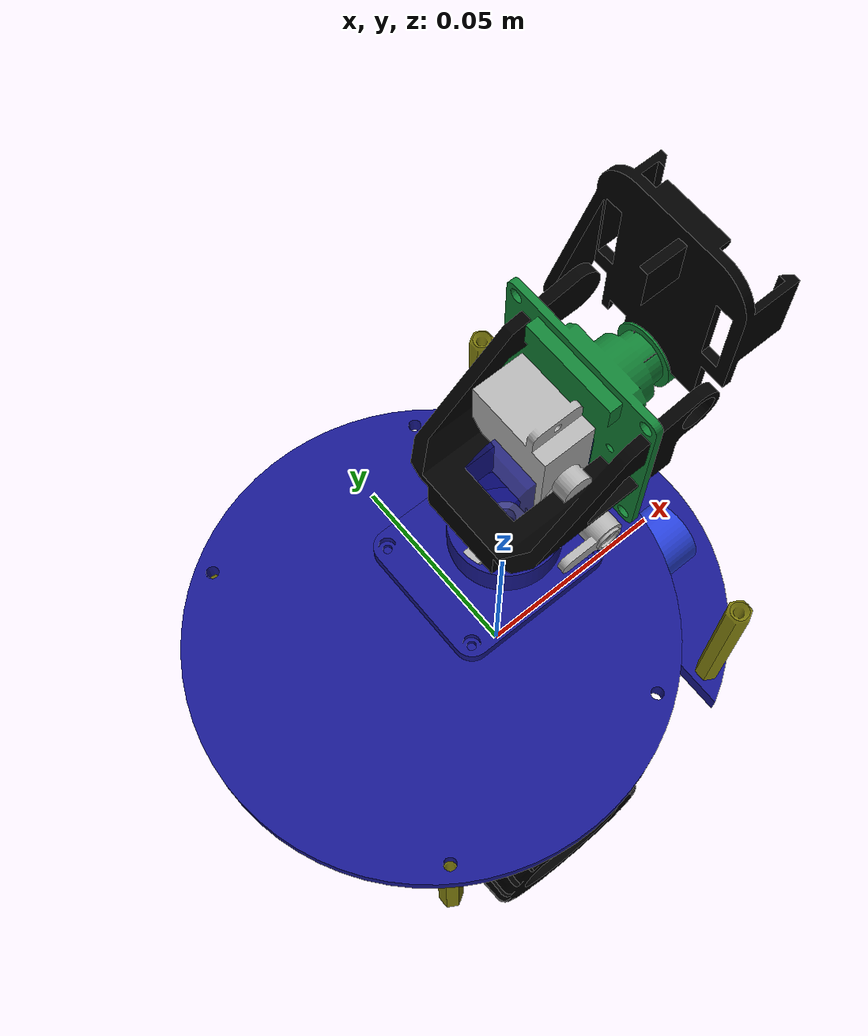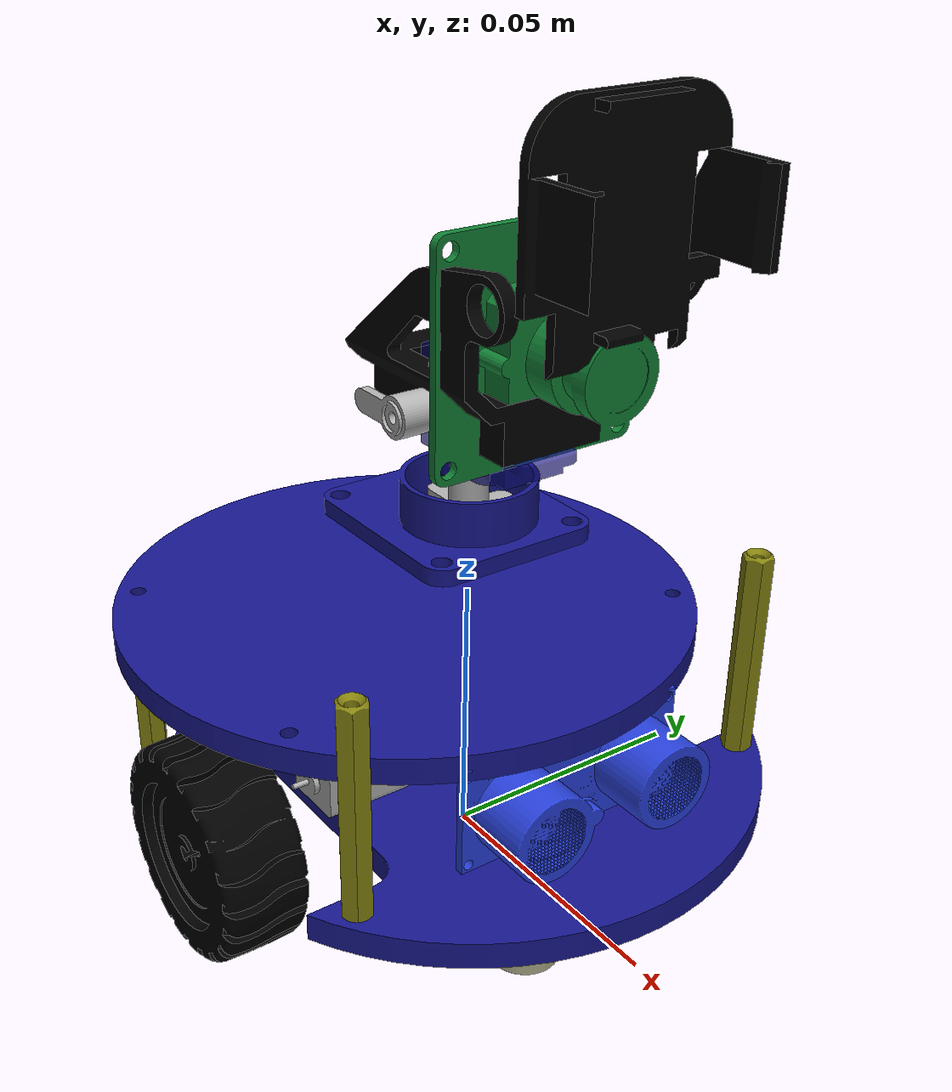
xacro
<?xml version="1.0" ?>
<robot name="alphabot" xmlns:xacro="http://www.ros.org/wiki/xacro">

<xacro:include filename="$(find alphabot_description)/urdf/materials.xacro" />
<xacro:include filename="$(find alphabot_description)/urdf/alphabot.trans" />
<xacro:include filename="$(find alphabot_description)/urdf/alphabot.gazebo" />
<link name="base_link">
  <inertial>
    <origin xyz="3.9964129120210354e-17 -1.949783532853795e-05 0.014547668321607015" rpy="0 0 0"/>
    <mass value="0.2"/>
    <inertia ixx="0.000125" iyy="0.000266" izz="0.000389" ixy="-0.0" iyz="-0.0" ixz="0.0"/>
  </inertial>
  <visual>
    <origin xyz="0 0 0" rpy="0 0 0"/>
    <geometry>
      <mesh filename="package://alphabot_description/meshes/base_link.stl" scale="0.001 0.001 0.001"/>
    </geometry>
    <material name="blue"/>
  </visual>
  <collision>
    <origin xyz="0 0 0" rpy="0 0 0"/>
    <geometry>
      <mesh filename="package://alphabot_description/meshes/base_link.stl" scale="0.001 0.001 0.001"/>
    </geometry>
  </collision>
</link>

<link name="spacer_1_1">
  <inertial>
    <origin xyz="-8.554354349876725e-08 -2.7824964554667986e-15 0.020056162439080906" rpy="0 0 0"/>
    <mass value="0.05"/>
    <inertia ixx="1e-06" iyy="1e-06" izz="0.0" ixy="-0.0" iyz="0.0" ixz="-0.0"/>
  </inertial>
  <visual>
    <origin xyz="-0.028948 -0.04191 -0.017048" rpy="0 0 0"/>
    <geometry>
      <mesh filename="package://alphabot_description/meshes/spacer_1_1.stl" scale="0.001 0.001 0.001"/>
    </geometry>
    <material name="gold"/>
  </visual>
  <collision>
    <origin xyz="-0.028948 -0.04191 -0.017048" rpy="0 0 0"/>
    <geometry>
      <mesh filename="package://alphabot_description/meshes/spacer_1_1.stl" scale="0.001 0.001 0.001"/>
    </geometry>
  </collision>
</link>

<link name="spacer_1_2">
  <inertial>
    <origin xyz="-8.554354354040061e-08 -2.7755575615628914e-15 0.020056162439080906" rpy="0 0 0"/>
    <mass value="0.05"/>
    <inertia ixx="1e-06" iyy="1e-06" izz="0.0" ixy="-0.0" iyz="0.0" ixz="-0.0"/>
  </inertial>
  <visual>
    <origin xyz="-0.028948 0.04191 -0.017048" rpy="0 0 0"/>
    <geometry>
      <mesh filename="package://alphabot_description/meshes/spacer_1_2.stl" scale="0.001 0.001 0.001"/>
    </geometry>
    <material name="gold"/>
  </visual>
  <collision>
    <origin xyz="-0.028948 0.04191 -0.017048" rpy="0 0 0"/>
    <geometry>
      <mesh filename="package://alphabot_description/meshes/spacer_1_2.stl" scale="0.001 0.001 0.001"/>
    </geometry>
  </collision>
</link>

<link name="spacer_1_3">
  <inertial>
    <origin xyz="8.554362094723156e-08 -2.7824964554667986e-15 0.02005616243908087" rpy="0 0 0"/>
    <mass value="0.05"/>
    <inertia ixx="1e-06" iyy="1e-06" izz="0.0" ixy="-0.0" iyz="0.0" ixz="-0.0"/>
  </inertial>
  <visual>
    <origin xyz="0.028948 0.04191 -0.017048" rpy="0 0 0"/>
    <geometry>
      <mesh filename="package://alphabot_description/meshes/spacer_1_3.stl" scale="0.001 0.001 0.001"/>
    </geometry>
    <material name="gold"/>
  </visual>
  <collision>
    <origin xyz="0.028948 0.04191 -0.017048" rpy="0 0 0"/>
    <geometry>
      <mesh filename="package://alphabot_description/meshes/spacer_1_3.stl" scale="0.001 0.001 0.001"/>
    </geometry>
  </collision>
</link>

<link name="spacer_1_4">
  <inertial>
    <origin xyz="8.554362097498713e-08 -2.7478019859472624e-15 0.02005616243908087" rpy="0 0 0"/>
    <mass value="0.05"/>
    <inertia ixx="1e-06" iyy="1e-06" izz="0.0" ixy="-0.0" iyz="0.0" ixz="-0.0"/>
  </inertial>
  <visual>
    <origin xyz="0.028948 -0.04191 -0.017048" rpy="0 0 0"/>
    <geometry>
      <mesh filename="package://alphabot_description/meshes/spacer_1_4.stl" scale="0.001 0.001 0.001"/>
    </geometry>
    <material name="gold"/>
  </visual>
  <collision>
    <origin xyz="0.028948 -0.04191 -0.017048" rpy="0 0 0"/>
    <geometry>
      <mesh filename="package://alphabot_description/meshes/spacer_1_4.stl" scale="0.001 0.001 0.001"/>
    </geometry>
  </collision>
</link>

<link name="ultasonic_1">
  <inertial>
    <origin xyz="0.033193707682986046 -9.529009860237083e-08 -0.0020378179399959465" rpy="0 0 0"/>
    <mass value="0.02930398813229992"/>
    <inertia ixx="6e-06" iyy="1e-06" izz="5e-06" ixy="-0.0" iyz="0.0" ixz="-0.0"/>
  </inertial>
  <visual>
    <origin xyz="-0.0 -0.0 -0.029095" rpy="0 0 0"/>
    <geometry>
      <mesh filename="package://alphabot_description/meshes/ultasonic_1.stl" scale="0.001 0.001 0.001"/>
    </geometry>
    <material name="blue_2"/>
  </visual>
  <collision>
    <origin xyz="-0.0 -0.0 -0.029095" rpy="0 0 0"/>
    <geometry>
      <mesh filename="package://alphabot_description/meshes/ultasonic_1.stl" scale="0.001 0.001 0.001"/>
    </geometry>
  </collision>
</link>

<link name="AA_1">
  <inertial>
    <origin xyz="1.7694179454963432e-16 -0.024725409875466925 -3.3167839298339774e-07" rpy="0 0 0"/>
    <mass value="0.2"/>
    <inertia ixx="1.3e-05" iyy="2e-06" izz="1.3e-05" ixy="0.0" iyz="-0.0" ixz="0.0"/>
  </inertial>
  <visual>
    <origin xyz="0.02225 -0.026 -0.026048" rpy="0 0 0"/>
    <geometry>
      <mesh filename="package://alphabot_description/meshes/AA_1.stl" scale="0.001 0.001 0.001"/>
    </geometry>
    <material name="white"/>
  </visual>
  <collision>
    <origin xyz="0.02225 -0.026 -0.026048" rpy="0 0 0"/>
    <geometry>
      <mesh filename="package://alphabot_description/meshes/AA_1.stl" scale="0.001 0.001 0.001"/>
    </geometry>
  </collision>
</link>

<link name="AA_2">
  <inertial>
    <origin xyz="2.0816681711721685e-16 0.024725409875466935 -3.3167839298339774e-07" rpy="0 0 0"/>
    <mass value="0.2"/>
    <inertia ixx="1.3e-05" iyy="2e-06" izz="1.3e-05" ixy="-0.0" iyz="-0.0" ixz="-0.0"/>
  </inertial>
  <visual>
    <origin xyz="0.03775 0.026 -0.026048" rpy="0 0 0"/>
    <geometry>
      <mesh filename="package://alphabot_description/meshes/AA_2.stl" scale="0.001 0.001 0.001"/>
    </geometry>
    <material name="white"/>
  </visual>
  <collision>
    <origin xyz="0.03775 0.026 -0.026048" rpy="0 0 0"/>
    <geometry>
      <mesh filename="package://alphabot_description/meshes/AA_2.stl" scale="0.001 0.001 0.001"/>
    </geometry>
  </collision>
</link>

<link name="battery_case_1">
  <inertial>
    <origin xyz="-0.030001214328793938 -3.4027627677573753e-05 -0.008341128938452552" rpy="0 0 0"/>
    <mass value="0.06781923232527433"/>
    <inertia ixx="2.2e-05" iyy="8e-06" izz="2.8e-05" ixy="-0.0" iyz="0.0" ixz="0.0"/>
  </inertial>
  <visual>
    <origin xyz="-0.0 -0.0 -0.029095" rpy="0 0 0"/>
    <geometry>
      <mesh filename="package://alphabot_description/meshes/battery_case_1.stl" scale="0.001 0.001 0.001"/>
    </geometry>
    <material name="black"/>
  </visual>
  <collision>
    <origin xyz="-0.0 -0.0 -0.029095" rpy="0 0 0"/>
    <geometry>
      <mesh filename="package://alphabot_description/meshes/battery_case_1.stl" scale="0.001 0.001 0.001"/>
    </geometry>
  </collision>
</link>

<link name="motor_1">
  <inertial>
    <origin xyz="-5.612031395152428e-11 -0.024604091884807677 -0.007047331744742258" rpy="0 0 0"/>
    <mass value="0.05"/>
    <inertia ixx="0.0" iyy="0.0" izz="0.0" ixy="-0.0" iyz="0.0" ixz="0.0"/>
  </inertial>
  <visual>
    <origin xyz="-0.0 -0.0 -0.029095" rpy="0 0 0"/>
    <geometry>
      <mesh filename="package://alphabot_description/meshes/motor_1.stl" scale="0.001 0.001 0.001"/>
    </geometry>
    <material name="silver"/>
  </visual>
  <collision>
    <origin xyz="-0.0 -0.0 -0.029095" rpy="0 0 0"/>
    <geometry>
      <mesh filename="package://alphabot_description/meshes/motor_1.stl" scale="0.001 0.001 0.001"/>
    </geometry>
  </collision>
</link>

<link name="motor_2">
  <inertial>
    <origin xyz="5.6120382785351805e-11 0.024604091884807677 -0.007047331744742258" rpy="0 0 0"/>
    <mass value="0.05"/>
    <inertia ixx="0.0" iyy="0.0" izz="0.0" ixy="-0.0" iyz="-0.0" ixz="-0.0"/>
  </inertial>
  <visual>
    <origin xyz="-0.0 -0.0 -0.029095" rpy="0 0 0"/>
    <geometry>
      <mesh filename="package://alphabot_description/meshes/motor_2.stl" scale="0.001 0.001 0.001"/>
    </geometry>
    <material name="silver"/>
  </visual>
  <collision>
    <origin xyz="-0.0 -0.0 -0.029095" rpy="0 0 0"/>
    <geometry>
      <mesh filename="package://alphabot_description/meshes/motor_2.stl" scale="0.001 0.001 0.001"/>
    </geometry>
  </collision>
</link>

<link name="top_link_1">
  <inertial>
    <origin xyz="0.028960085543582276 0.04191000000000044 0.0024996683216068558" rpy="0 0 0"/>
    <mass value="0.37189545514665234"/>
    <inertia ixx="0.000281" iyy="0.000282" izz="0.000561" ixy="0.0" iyz="-0.0" ixz="0.0"/>
  </inertial>
  <visual>
    <origin xyz="0.028948 0.04191 -0.057423" rpy="0 0 0"/>
    <geometry>
      <mesh filename="package://alphabot_description/meshes/top_link_1.stl" scale="0.001 0.001 0.001"/>
    </geometry>
    <material name="blue"/>
  </visual>
  <collision>
    <origin xyz="0.028948 0.04191 -0.057423" rpy="0 0 0"/>
    <geometry>
      <mesh filename="package://alphabot_description/meshes/top_link_1.stl" scale="0.001 0.001 0.001"/>
    </geometry>
  </collision>
</link>

<link name="pantilt_1_1">
  <inertial>
    <origin xyz="-0.0036327417220515914 -2.873247422695575e-15 0.0018087943330409653" rpy="0 0 0"/>
    <mass value="0.02484644401179895"/>
    <inertia ixx="2e-06" iyy="3e-06" izz="5e-06" ixy="0.0" iyz="-0.0" ixz="-0.0"/>
  </inertial>
  <visual>
    <origin xyz="-1.2e-05 0.0 -0.062423" rpy="0 0 0"/>
    <geometry>
      <mesh filename="package://alphabot_description/meshes/pantilt_1_1.stl" scale="0.001 0.001 0.001"/>
    </geometry>
    <material name="blue"/>
  </visual>
  <collision>
    <origin xyz="-1.2e-05 0.0 -0.062423" rpy="0 0 0"/>
    <geometry>
      <mesh filename="package://alphabot_description/meshes/pantilt_1_1.stl" scale="0.001 0.001 0.001"/>
    </geometry>
  </collision>
</link>

<link name="servo_emax_1_1">
  <inertial>
    <origin xyz="8.554358228704865e-08 1.254629415068201e-13 0.0035263014079521815" rpy="0 0 0"/>
    <mass value="0.0035428307305659244"/>
    <inertia ixx="0.0" iyy="0.0" izz="0.0" ixy="-0.0" iyz="-0.0" ixz="0.0"/>
  </inertial>
  <visual>
    <origin xyz="-1.2e-05 0.0 -0.064423" rpy="0 0 0"/>
    <geometry>
      <mesh filename="package://alphabot_description/meshes/servo_emax_1_1.stl" scale="0.001 0.001 0.001"/>
    </geometry>
    <material name="silver"/>
  </visual>
  <collision>
    <origin xyz="-1.2e-05 0.0 -0.064423" rpy="0 0 0"/>
    <geometry>
      <mesh filename="package://alphabot_description/meshes/servo_emax_1_1.stl" scale="0.001 0.001 0.001"/>
    </geometry>
  </collision>
</link>

<link name="pantilt_2_1">
  <inertial>
    <origin xyz="-0.0044345407767680915 0.08095404581089227 0.003603404587610881" rpy="0 0 0"/>
    <mass value="0.05139456940551715"/>
    <inertia ixx="1e-05" iyy="1.1e-05" izz="1.4e-05" ixy="-0.0" iyz="-0.0" ixz="-2e-06"/>
  </inertial>
  <visual>
    <origin xyz="-0.01175 0.081723 -0.091723" rpy="0 0 0"/>
    <geometry>
      <mesh filename="package://alphabot_description/meshes/pantilt_2_1.stl" scale="0.001 0.001 0.001"/>
    </geometry>
    <material name="black"/>
  </visual>
  <collision>
    <origin xyz="-0.01175 0.081723 -0.091723" rpy="0 0 0"/>
    <geometry>
      <mesh filename="package://alphabot_description/meshes/pantilt_2_1.stl" scale="0.001 0.001 0.001"/>
    </geometry>
  </collision>
</link>

<link name="servo_emax_2_1">
  <inertial>
    <origin xyz="-0.09208845165187876 -0.04184616942907199 -0.06897233167823215" rpy="0 0 0"/>
    <mass value="0.0026502814230264554"/>
    <inertia ixx="0.0" iyy="0.0" izz="0.0" ixy="-0.0" iyz="-0.0" ixz="-0.0"/>
  </inertial>
  <visual>
    <origin xyz="-0.118253 -0.025389 -0.180545" rpy="0 0 0"/>
    <geometry>
      <mesh filename="package://alphabot_description/meshes/servo_emax_2_1.stl" scale="0.001 0.001 0.001"/>
    </geometry>
    <material name="silver"/>
  </visual>
  <collision>
    <origin xyz="-0.118253 -0.025389 -0.180545" rpy="0 0 0"/>
    <geometry>
      <mesh filename="package://alphabot_description/meshes/servo_emax_2_1.stl" scale="0.001 0.001 0.001"/>
    </geometry>
  </collision>
</link>

<link name="pantilt_3_1">
  <inertial>
    <origin xyz="0.13325626443826744 -0.013095879873687058 0.02043119326869315" rpy="0 0 0"/>
    <mass value="0.025707768034284914"/>
    <inertia ixx="6e-06" iyy="3e-06" izz="4e-06" ixy="0.0" iyz="0.0" ixz="-0.0"/>
  </inertial>
  <visual>
    <origin xyz="0.098261 -0.0148 -0.102061" rpy="0 0 0"/>
    <geometry>
      <mesh filename="package://alphabot_description/meshes/pantilt_3_1.stl" scale="0.001 0.001 0.001"/>
    </geometry>
    <material name="black"/>
  </visual>
  <collision>
    <origin xyz="0.098261 -0.0148 -0.102061" rpy="0 0 0"/>
    <geometry>
      <mesh filename="package://alphabot_description/meshes/pantilt_3_1.stl" scale="0.001 0.001 0.001"/>
    </geometry>
  </collision>
</link>

<link name="servo_2_1">
  <inertial>
    <origin xyz="8.55435810034888e-08 0.012439350245232213 0.005558642662359281" rpy="0 0 0"/>
    <mass value="0.048166128445804444"/>
    <inertia ixx="4e-06" iyy="3e-06" izz="3e-06" ixy="-0.0" iyz="-0.0" ixz="-0.0"/>
  </inertial>
  <visual>
    <origin xyz="-0.027112 0.0112 -0.111573" rpy="0 0 0"/>
    <geometry>
      <mesh filename="package://alphabot_description/meshes/servo_2_1.stl" scale="0.001 0.001 0.001"/>
    </geometry>
    <material name="silver"/>
  </visual>
  <collision>
    <origin xyz="-0.027112 0.0112 -0.111573" rpy="0 0 0"/>
    <geometry>
      <mesh filename="package://alphabot_description/meshes/servo_2_1.stl" scale="0.001 0.001 0.001"/>
    </geometry>
  </collision>
</link>

<link name="servo_1_1">
  <inertial>
    <origin xyz="0.005559059884334861 -1.4876988529977098e-15 0.012439018566839363" rpy="0 0 0"/>
    <mass value="0.048166128445804444"/>
    <inertia ixx="3e-06" iyy="4e-06" izz="3e-06" ixy="-0.0" iyz="-0.0" ixz="-0.0"/>
  </inertial>
  <visual>
    <origin xyz="-1.2e-05 0.0 -0.073923" rpy="0 0 0"/>
    <geometry>
      <mesh filename="package://alphabot_description/meshes/servo_1_1.stl" scale="0.001 0.001 0.001"/>
    </geometry>
    <material name="light_blue"/>
  </visual>
  <collision>
    <origin xyz="-1.2e-05 0.0 -0.073923" rpy="0 0 0"/>
    <geometry>
      <mesh filename="package://alphabot_description/meshes/servo_1_1.stl" scale="0.001 0.001 0.001"/>
    </geometry>
  </collision>
</link>

<link name="camera_1">
  <inertial>
    <origin xyz="0.0054251818860430664 -1.398078701420058e-15 0.0006839016107979407" rpy="0 0 0"/>
    <mass value="0.007223141621539521"/>
    <inertia ixx="1e-06" iyy="1e-06" izz="1e-06" ixy="-0.0" iyz="-0.0" ixz="0.0"/>
  </inertial>
  <visual>
    <origin xyz="-0.035312 -0.0007 -0.122273" rpy="0 0 0"/>
    <geometry>
      <mesh filename="package://alphabot_description/meshes/camera_1.stl" scale="0.001 0.001 0.001"/>
    </geometry>
    <material name="green"/>
  </visual>
  <collision>
    <origin xyz="-0.035312 -0.0007 -0.122273" rpy="0 0 0"/>
    <geometry>
      <mesh filename="package://alphabot_description/meshes/camera_1.stl" scale="0.001 0.001 0.001"/>
    </geometry>
  </collision>
</link>

<link name="ball_1">
  <inertial>
    <origin xyz="4.163336342344337e-17 0.0 -0.001000409009021104" rpy="0 0 0"/>
    <mass value="0.005036225223550487"/>
    <inertia ixx="0.0" iyy="0.0" izz="0.0" ixy="0.0" iyz="-0.0" ixz="-0.0"/>
  </inertial>
  <visual>
    <origin xyz="0.04 0.0 -0.007547" rpy="0 0 0"/>
    <geometry>
      <mesh filename="package://alphabot_description/meshes/ball_1.stl" scale="0.001 0.001 0.001"/>
    </geometry>
    <material name="silver"/>
  </visual>
  <collision>
    <origin xyz="0.04 0.0 -0.007547" rpy="0 0 0"/>
    <geometry>
      <mesh filename="package://alphabot_description/meshes/ball_1.stl" scale="0.001 0.001 0.001"/>
    </geometry>
  </collision>
</link>

<link name="housing_1">
  <inertial>
    <origin xyz="-0.03999999999999995 -1.7763568394002505e-17 -0.016681638158599674" rpy="0 0 0"/>
    <mass value="0.003819569070267199"/>
    <inertia ixx="0.0" iyy="0.0" izz="0.0" ixy="0.0" iyz="0.0" ixz="0.0"/>
  </inertial>
  <visual>
    <origin xyz="-0.0 -0.0 -0.024095" rpy="0 0 0"/>
    <geometry>
      <mesh filename="package://alphabot_description/meshes/housing_1.stl" scale="0.001 0.001 0.001"/>
    </geometry>
    <material name="white"/>
  </visual>
  <collision>
    <origin xyz="-0.0 -0.0 -0.024095" rpy="0 0 0"/>
    <geometry>
      <mesh filename="package://alphabot_description/meshes/housing_1.stl" scale="0.001 0.001 0.001"/>
    </geometry>
  </collision>
</link>

<link name="ball_2">
  <inertial>
    <origin xyz="0.08000000000000003 -1.7763568394002505e-17 -0.0010004090090210953" rpy="0 0 0"/>
    <mass value="0.005036225223550487"/>
    <inertia ixx="0.0" iyy="0.0" izz="0.0" ixy="0.0" iyz="-0.0" ixz="0.0"/>
  </inertial>
  <visual>
    <origin xyz="0.04 0.0 -0.007547" rpy="0 0 0"/>
    <geometry>
      <mesh filename="package://alphabot_description/meshes/ball_2.stl" scale="0.001 0.001 0.001"/>
    </geometry>
    <material name="silver"/>
  </visual>
  <collision>
    <origin xyz="0.04 0.0 -0.007547" rpy="0 0 0"/>
    <geometry>
      <mesh filename="package://alphabot_description/meshes/ball_2.stl" scale="0.001 0.001 0.001"/>
    </geometry>
  </collision>
</link>

<link name="housing_2">
  <inertial>
    <origin xyz="0.040000000000000015 -3.552713678800501e-17 -0.016681638158599674" rpy="0 0 0"/>
    <mass value="0.003819569070267199"/>
    <inertia ixx="0.0" iyy="0.0" izz="0.0" ixy="0.0" iyz="0.0" ixz="-0.0"/>
  </inertial>
  <visual>
    <origin xyz="-0.0 -0.0 -0.024095" rpy="0 0 0"/>
    <geometry>
      <mesh filename="package://alphabot_description/meshes/housing_2.stl" scale="0.001 0.001 0.001"/>
    </geometry>
    <material name="white"/>
  </visual>
  <collision>
    <origin xyz="-0.0 -0.0 -0.024095" rpy="0 0 0"/>
    <geometry>
      <mesh filename="package://alphabot_description/meshes/housing_2.stl" scale="0.001 0.001 0.001"/>
    </geometry>
  </collision>
</link>

<link name="left_wheel_1">
  <inertial>
    <origin xyz="3.608732648937964e-06 0.07958937458754446 -2.519122826071668e-06" rpy="0 0 0"/>
    <mass value="0.1"/>
    <inertia ixx="1.8e-05" iyy="3.1e-05" izz="1.8e-05" ixy="-0.0" iyz="0.0" ixz="-0.0"/>
  </inertial>
  <visual>
    <origin xyz="0.0 0.037 -0.022048" rpy="0 0 0"/>
    <geometry>
      <mesh filename="package://alphabot_description/meshes/left_wheel_1.stl" scale="0.001 0.001 0.001"/>
    </geometry>
    <material name="black"/>
  </visual>
  <collision>
    <origin xyz="0.0 0.037 -0.022048" rpy="0 0 0"/>
    <geometry>
      <mesh filename="package://alphabot_description/meshes/left_wheel_1.stl" scale="0.001 0.001 0.001"/>
    </geometry>
  </collision>
</link>

<link name="right_wheel_1">
  <inertial>
    <origin xyz="-3.6087326488468997e-06 -0.005589374587544396 -2.5191228260612597e-06" rpy="0 0 0"/>
    <mass value="0.1"/>
    <inertia ixx="1.8e-05" iyy="3.1e-05" izz="1.8e-05" ixy="-0.0" iyz="-0.0" ixz="0.0"/>
  </inertial>
  <visual>
    <origin xyz="0.0 0.037 -0.022048" rpy="0 0 0"/>
    <geometry>
      <mesh filename="package://alphabot_description/meshes/right_wheel_1.stl" scale="0.001 0.001 0.001"/>
    </geometry>
    <material name="black"/>
  </visual>
  <collision>
    <origin xyz="0.0 0.037 -0.022048" rpy="0 0 0"/>
    <geometry>
      <mesh filename="package://alphabot_description/meshes/right_wheel_1.stl" scale="0.001 0.001 0.001"/>
    </geometry>
  </collision>
</link>

<joint name="Rigid 6" type="fixed">
  <origin xyz="0.028948 0.04191 0.017048" rpy="0 0 0"/>
  <parent link="base_link"/>
  <child link="spacer_1_1"/>
</joint>

<joint name="Rigid 7" type="fixed">
  <origin xyz="0.028948 -0.04191 0.017048" rpy="0 0 0"/>
  <parent link="base_link"/>
  <child link="spacer_1_2"/>
</joint>

<joint name="Rigid 8" type="fixed">
  <origin xyz="-0.028948 -0.04191 0.017048" rpy="0 0 0"/>
  <parent link="base_link"/>
  <child link="spacer_1_3"/>
</joint>

<joint name="Rigid 9" type="fixed">
  <origin xyz="-0.028948 0.04191 0.017048" rpy="0 0 0"/>
  <parent link="base_link"/>
  <child link="spacer_1_4"/>
</joint>

<joint name="Rigid 10" type="fixed">
  <origin xyz="0.0 0.0 0.029095" rpy="0 0 0"/>
  <parent link="base_link"/>
  <child link="ultasonic_1"/>
</joint>

<joint name="Rigid 13" type="fixed">
  <origin xyz="-0.02225 0.026 -0.003047" rpy="0 0 0"/>
  <parent link="battery_case_1"/>
  <child link="AA_1"/>
</joint>

<joint name="Rigid 14" type="fixed">
  <origin xyz="-0.03775 -0.026 -0.003047" rpy="0 0 0"/>
  <parent link="battery_case_1"/>
  <child link="AA_2"/>
</joint>

<joint name="Rigid 15" type="fixed">
  <origin xyz="0.0 0.0 0.029095" rpy="0 0 0"/>
  <parent link="base_link"/>
  <child link="battery_case_1"/>
</joint>

<joint name="Rigid 16" type="fixed">
  <origin xyz="0.0 0.0 0.029095" rpy="0 0 0"/>
  <parent link="base_link"/>
  <child link="motor_1"/>
</joint>

<joint name="Rigid 17" type="fixed">
  <origin xyz="0.0 0.0 0.029095" rpy="0 0 0"/>
  <parent link="base_link"/>
  <child link="motor_2"/>
</joint>

<joint name="Rigid 20" type="fixed">
  <origin xyz="0.0 0.0 0.040375" rpy="0 0 0"/>
  <parent link="spacer_1_3"/>
  <child link="top_link_1"/>
</joint>

<joint name="Rigid 21" type="fixed">
  <origin xyz="0.02896 0.04191 0.005" rpy="0 0 0"/>
  <parent link="top_link_1"/>
  <child link="pantilt_1_1"/>
</joint>

<joint name="Rigid 22" type="fixed">
  <origin xyz="0.0 0.0 0.002" rpy="0 0 0"/>
  <parent link="pantilt_1_1"/>
  <child link="servo_emax_1_1"/>
</joint>

<joint name="Rigid 24" type="fixed">
  <origin xyz="0.011738 -0.081723 0.0178" rpy="0 0 0"/>
  <parent link="servo_1_1"/>
  <child link="pantilt_2_1"/>
</joint>

<joint name="Rigid 27" type="fixed">
  <origin xyz="0.106503 0.107112 0.088822" rpy="0 0 0"/>
  <parent link="pantilt_2_1"/>
  <child link="servo_emax_2_1"/>
</joint>

<joint name="Rigid 29" type="fixed">
  <origin xyz="-0.125373 0.026 -0.009512" rpy="0 0 0"/>
  <parent link="servo_2_1"/>
  <child link="pantilt_3_1"/>
</joint>

<joint name="Revolute 30" type="continuous">
  <origin xyz="-0.091141 -0.036589 -0.068972" rpy="0 0 0"/>
  <parent link="servo_emax_2_1"/>
  <child link="servo_2_1"/>
  <axis xyz="0.0 1.0 0.0"/>
  <dynamics damping="0.1" friction="100"/>
  <limit effort="130" lower="-1.57" upper="1.57" velocity="6.98"/>
</joint>

<joint name="Revolute 31" type="continuous">
  <origin xyz="0.0 0.0 0.0095" rpy="0 0 0"/>
  <parent link="servo_emax_1_1"/>
  <child link="servo_1_1"/>
  <axis xyz="-0.0 -0.0 1.0"/>
  <dynamics damping="0.01" friction="1"/>
  <limit effort="130" lower="-1.57" upper="1.57" velocity="6.98"/>
</joint>

<joint name="Rigid 32" type="fixed">
  <origin xyz="0.133573 -0.0141 0.020212" rpy="0 0 0"/>
  <parent link="pantilt_3_1"/>
  <child link="camera_1"/>
</joint>

<joint name="Rigid 43" type="fixed">
  <origin xyz="-0.04 -0.0 -0.016548" rpy="0 0 0"/>
  <parent link="housing_1"/>
  <child link="ball_1"/>
</joint>

<joint name="Rigid 44" type="fixed">
  <origin xyz="0.0 0.0 0.024095" rpy="0 0 0"/>
  <parent link="base_link"/>
  <child link="housing_1"/>
</joint>

<joint name="Rigid 45" type="fixed">
  <origin xyz="-0.04 -0.0 -0.016548" rpy="0 0 0"/>
  <parent link="housing_2"/>
  <child link="ball_2"/>
</joint>

<joint name="Rigid 46" type="fixed">
  <origin xyz="0.0 0.0 0.024095" rpy="0 0 0"/>
  <parent link="base_link"/>
  <child link="housing_2"/>
</joint>

<joint name="Revolute 18" type="continuous">
  <origin xyz="-0.0 -0.037 -0.007047" rpy="0 0 0"/>
  <parent link="motor_2"/>
  <child link="left_wheel_1"/>
  <axis xyz="0.0 1.0 -0.0"/>
  <dynamics damping="2" friction="2"/>
</joint>

<joint name="Revolute 19" type="continuous">
  <origin xyz="-0.0 -0.037 -0.007047" rpy="0 0 0"/>
  <parent link="motor_1"/>
  <child link="right_wheel_1"/>
  <axis xyz="0.0 1.0 -0.0"/>
  <dynamics damping="2" friction="2"/>
</joint>

</robot>

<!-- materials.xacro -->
<robot name="alphabot" xmlns:xacro="http://www.ros.org/wiki/xacro" >

<material name="silver">
  <color rgba="0.700 0.700 0.700 1.000"/>
</material>

<material name="gold">
  <color rgba="0.54 0.53 0.06 1.000"/>
</material>

<material name="black">
  <color rgba="0.0 0.0 0.0 1.000"/>
</material>

<material name="blue">
  <color rgba="0.09 0.09 0.56 1.000"/>
</material>

<material name="light_blue">
  <color rgba="0.09 0.09 0.56 0.7"/>
</material>

<material name="blue_2">
  <color rgba="0.16 0.26 0.87 1.000"/>
</material>

<material name="white">
  <color rgba="0.69 0.69 0.55 1.000"/>
</material>

<material name="green">
  <color rgba="0.07 0.51 0.21 1.000"/>
</material>

</robot>

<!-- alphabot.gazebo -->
<robot name="alphabot" xmlns:xacro="http://www.ros.org/wiki/xacro" >

<xacro:property name="blue" value="Gazebo/Blue" />
<xacro:property name="silver" value="Gazebo/Silver" />
<xacro:property name="black" value="Gazebo/Black" />
<xacro:property name="green" value="Gazebo/Green" />
<xacro:property name="gold" value="Gazebo/Gold" />
<xacro:property name="blue_2" value="Gazebo/SkyBlue" />

<gazebo>
  <plugin name="gazebo_ros_control" filename="libgazebo_ros_control.so">
    <robotNamespace>/alphabot</robotNamespace>
  </plugin>
  <plugin name="differential_drive_controller" filename="libgazebo_ros_diff_drive.so">

    <!-- Plugin update rate in Hz -->
    <updateRate>5</updateRate>

    <!-- Name of left joint, defaults to `left_joint` -->
    <leftJoint>Revolute 18</leftJoint>

    <!-- Name of right joint, defaults to `right_joint` -->
    <rightJoint>Revolute 19</rightJoint>

    <!-- The distance from the center of one wheel to the other, in meters, defaults to 0.34 m -->
    <wheelSeparation>0.08</wheelSeparation>

    <!-- Diameter of the wheels, in meters, defaults to 0.15 m -->
    <wheelDiameter>0.043</wheelDiameter>

    <!-- Wheel acceleration, in rad/s^2, defaults to 0.0 rad/s^2 -->
    <wheelAcceleration>1.0</wheelAcceleration>

    <!-- Maximum torque which the wheels can produce, in Nm, defaults to 5 Nm -->
    <wheelTorque>100</wheelTorque>

    <!-- Topic to receive geometry_msgs/Twist message commands, defaults to `cmd_vel` -->
    <commandTopic>cmd_vel</commandTopic>

    <!-- Topic to publish nav_msgs/Odometry messages, defaults to `odom` -->
    <odometryTopic>odom</odometryTopic>

    <!-- Odometry frame, defaults to `odom` -->
    <odometryFrame>odom</odometryFrame>

    <!-- Robot frame to calculate odometry from, defaults to `base_footprint` -->
    <robotBaseFrame>base_footprint</robotBaseFrame>

    <!-- Odometry source, 0 for ENCODER, 1 for WORLD, defaults to WORLD -->
    <odometrySource>1</odometrySource>

    <!-- Set to true to publish transforms for the wheel links, defaults to false -->
    <publishWheelTF>true</publishWheelTF>

    <!-- Set to true to publish transforms for the odometry, defaults to true -->
    <publishOdom>true</publishOdom>

    <!-- Set to true to publish sensor_msgs/JointState on /joint_states for the wheel joints, defaults to false -->
    <publishWheelJointState>true</publishWheelJointState>

    <!-- Set to true to swap right and left wheels, defaults to true -->
    <legacyMode>false</legacyMode>
  </plugin>
</gazebo>
<gazebo reference="base_link">
  <material>${blue}</material>
  <mu1>0.2</mu1>
  <mu2>0.2</mu2>
  <selfCollide>true</selfCollide>
  <gravity>true</gravity>
</gazebo>

<gazebo reference="spacer_1_1">
  <material>${gold}</material>
  <mu1>0.2</mu1>
  <mu2>0.2</mu2>
  <selfCollide>true</selfCollide>
</gazebo>

<gazebo reference="spacer_1_2">
  <material>${gold}</material>
  <mu1>0.2</mu1>
  <mu2>0.2</mu2>
  <selfCollide>true</selfCollide>
</gazebo>

<gazebo reference="spacer_1_3">
  <material>${gold}</material>
  <mu1>0.2</mu1>
  <mu2>0.2</mu2>
  <selfCollide>true</selfCollide>
</gazebo>

<gazebo reference="spacer_1_4">
  <material>${gold}</material>
  <mu1>0.2</mu1>
  <mu2>0.2</mu2>
  <selfCollide>true</selfCollide>
</gazebo>

<gazebo reference="ultasonic_1">
  <sensor type="ray" name="TeraRanger">
    <pose>0 0 0 0 0 0</pose>
    <visualize>true</visualize>
    <update_rate>50</update_rate>
    <ray>
        <scan>
          <horizontal>
              <samples>10</samples>
              <resolution>1</resolution>
              <min_angle>-0.14835</min_angle>
              <max_angle>0.14835</max_angle>
          </horizontal>
          <vertical>
              <samples>10</samples>
              <resolution>1</resolution>
              <min_angle>-0.14835</min_angle>
              <max_angle>0.14835</max_angle>
          </vertical>
        </scan>
        <range>
          <min>0.01</min>
          <max>0.2</max>
          <resolution>0.02</resolution>
        </range>
    </ray>
    <plugin filename="libgazebo_ros_range.so" name="gazebo_ros_range">
        <gaussianNoise>0.005</gaussianNoise>
        <alwaysOn>true</alwaysOn>
        <updateRate>50</updateRate>
        <topicName>sensor/ir_front</topicName>
        <frameName>base_ir_front</frameName>
        <radiation>INFRARED</radiation>
        <fov>0.2967</fov>
    </plugin>
  </sensor>
  <material>${blue_2}</material>
  <mu1>0.2</mu1>
  <mu2>0.2</mu2>
  <selfCollide>true</selfCollide>
</gazebo>

<gazebo reference="AA_1">
  <material>${silver}</material>
  <mu1>0.2</mu1>
  <mu2>0.2</mu2>
  <selfCollide>true</selfCollide>
</gazebo>

<gazebo reference="AA_2">
  <material>${silver}</material>
  <mu1>0.2</mu1>
  <mu2>0.2</mu2>
  <selfCollide>true</selfCollide>
</gazebo>

<gazebo reference="battery_case_1">
  <material>${black}</material>
  <mu1>0.2</mu1>
  <mu2>0.2</mu2>
  <selfCollide>true</selfCollide>
</gazebo>

<gazebo reference="motor_1">
  <material>${silver}</material>
  <mu1>0.2</mu1>
  <mu2>0.2</mu2>
  <selfCollide>true</selfCollide>
</gazebo>

<gazebo reference="motor_2">
  <material>${silver}</material>
  <mu1>0.2</mu1>
  <mu2>0.2</mu2>
  <selfCollide>true</selfCollide>
</gazebo>

<gazebo reference="left_wheel_1">
  <material>${black}</material>
  <mu1>1000</mu1>
  <mu2>1000</mu2>
  <selfCollide>true</selfCollide>
  <kp value="1000.0" />
  <kd value="1.0" />
</gazebo>

<gazebo reference="right_wheel_1">
  <material>${black}</material>
  <mu1>1000</mu1>
  <mu2>1000</mu2>
  <selfCollide>true</selfCollide>
  <kp value="1000.0" />
  <kd value="1.0" />
</gazebo>

<gazebo reference="top_link_1">
  <material>${blue}</material>
  <mu1>0.2</mu1>
  <mu2>0.2</mu2>
  <selfCollide>true</selfCollide>
</gazebo>

<gazebo reference="pantilt_1_1">
  <material>${black}</material>
  <mu1>0.2</mu1>
  <mu2>0.2</mu2>
  <selfCollide>true</selfCollide>
</gazebo>

<gazebo reference="servo_emax_1_1">
  <material>${silver}</material>
  <mu1>0.2</mu1>
  <mu2>0.2</mu2>
  <selfCollide>true</selfCollide>
</gazebo>

<gazebo reference="pantilt_2_1">
  <material>${black}</material>
  <mu1>0.2</mu1>
  <mu2>0.2</mu2>
  <selfCollide>true</selfCollide>
</gazebo>

<gazebo reference="servo_emax_2_1">
  <material>${silver}</material>
  <mu1>0.2</mu1>
  <mu2>0.2</mu2>
  <selfCollide>true</selfCollide>
</gazebo>

<gazebo reference="pantilt_3_1">
  <material>${black}</material>
  <mu1>0.2</mu1>
  <mu2>0.2</mu2>
  <selfCollide>true</selfCollide>
</gazebo>

<gazebo reference="servo_2_1">
  <material>${blue}</material>
  <mu1>0.2</mu1>
  <mu2>0.2</mu2>
  <selfCollide>true</selfCollide>
</gazebo>

<gazebo reference="servo_1_1">
  <material>${blue}</material>
  <mu1>0.2</mu1>
  <mu2>0.2</mu2>
  <selfCollide>true</selfCollide>
</gazebo>

<gazebo reference="camera_1">
  <sensor type="camera" name="camera1">
    <update_rate>30.0</update_rate>
    <camera name="head">
      <horizontal_fov>1.3962634</horizontal_fov>
      <image>
        <width>800</width>
        <height>800</height>
        <format>R8G8B8</format>
      </image>
      <clip>
        <near>0.02</near>
        <far>300</far>
      </clip>
      <noise>
        <type>gaussian</type>
        <!-- Noise is sampled independently per pixel on each frame.
              That pixel's noise value is added to each of its color
              channels, which at that point lie in the range [0,1]. -->
        <mean>0.0</mean>
        <stddev>0.007</stddev>
      </noise>
    </camera>
    <plugin name="camera_controller" filename="libgazebo_ros_camera.so">
      <alwaysOn>true</alwaysOn>
      <updateRate>0.0</updateRate>
      <cameraName>alphabot/camera1</cameraName>
      <imageTopicName>image_raw</imageTopicName>
      <cameraInfoTopicName>camera_info</cameraInfoTopicName>
      <frameName>camera_link</frameName>
      <hackBaseline>0.07</hackBaseline>
      <distortionK1>0.0</distortionK1>
      <distortionK2>0.0</distortionK2>
      <distortionK3>0.0</distortionK3>
      <distortionT1>0.0</distortionT1>
      <distortionT2>0.0</distortionT2>
    </plugin>
  </sensor>
  <material>${green}</material>
  <mu1>0.2</mu1>
  <mu2>0.2</mu2>
  <selfCollide>true</selfCollide>
</gazebo>

<gazebo reference="ball_1">
  <material>${silver}</material>
  <mu1>0.0001</mu1>
  <mu2>0.0001</mu2>
  <kp>0.1</kp>
  <kd>0.1</kd>
  <selfCollide>true</selfCollide>
</gazebo>

<gazebo reference="housing_1">
  <material>${silver}</material>
  <mu1>0.2</mu1>
  <mu2>0.2</mu2>
  <selfCollide>true</selfCollide>
</gazebo>

<gazebo reference="ball_2">
  <material>${silver}</material>
  <mu1>0.0001</mu1>
  <mu2>0.0001</mu2>
  <kp>0.1</kp>
  <kd>0.1</kd>
  <selfCollide>true</selfCollide>
</gazebo>

<gazebo reference="housing_2">
  <material>${silver}</material>
  <mu1>0.2</mu1>
  <mu2>0.2</mu2>
  <selfCollide>true</selfCollide>
</gazebo>

</robot>
